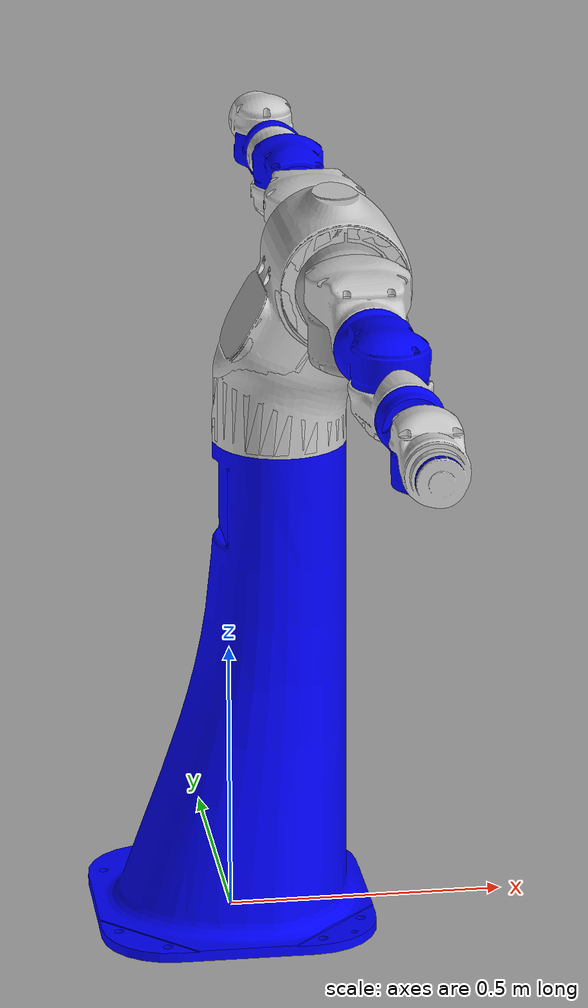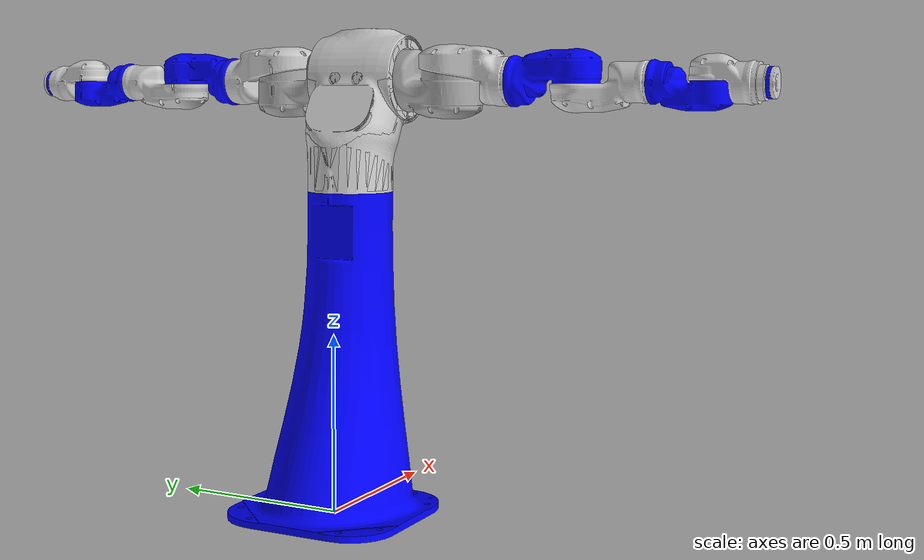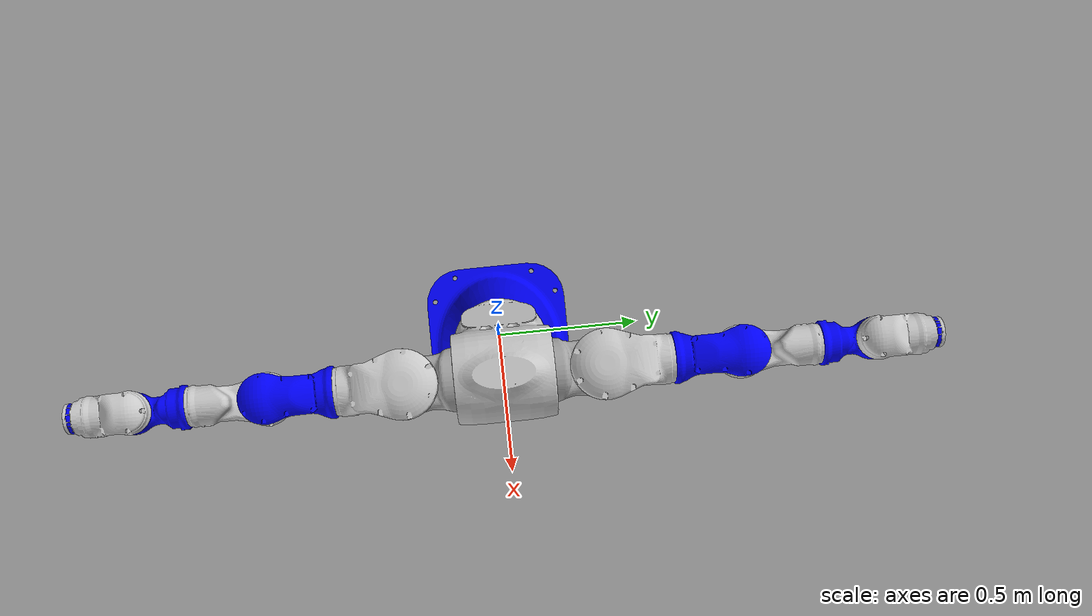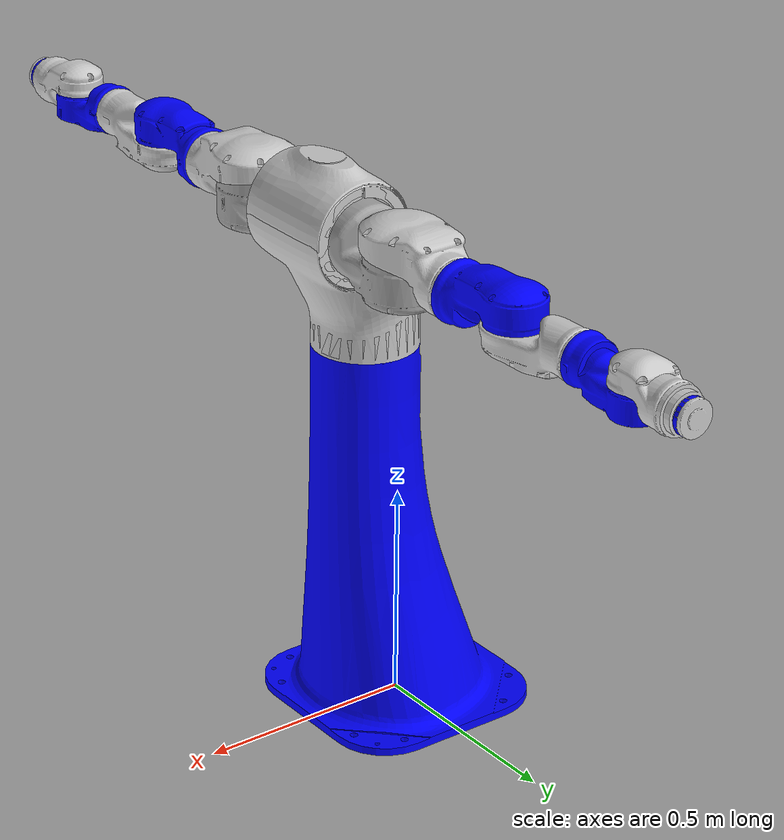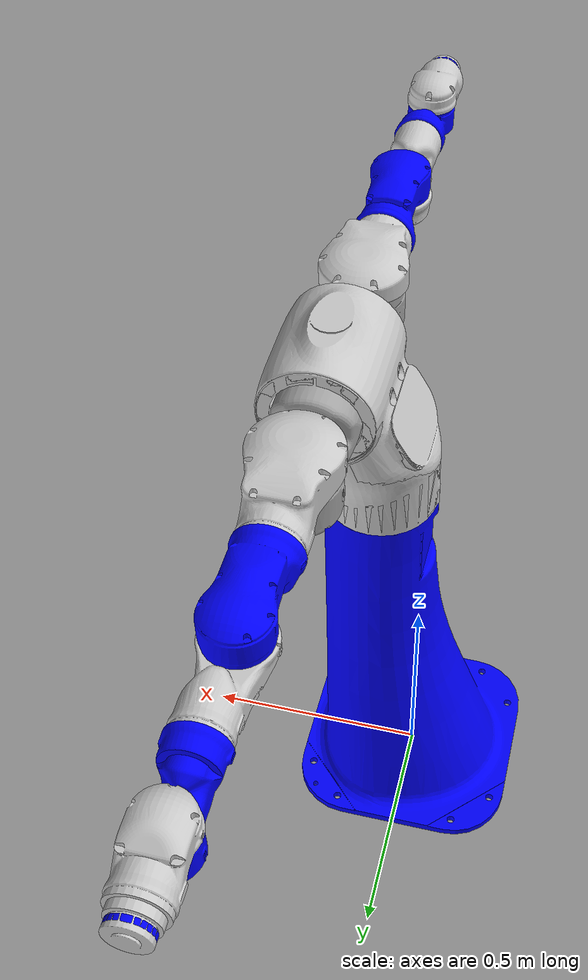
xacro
<?xml version="1.0" ?>
<robot xmlns:xacro="http://ros.org/wiki/xacro"
    name="sda10f">
        <xacro:include filename="$(find motoman_sda10f_support)/urdf/common_torso_macro.xacro" />
        <xacro:include filename="$(find motoman_sda10f_support)/urdf/arm_macro.xacro" />

        <xacro:torso name="torso" prefix="torso_"/>

        <xacro:motoman_arm name="arm_left" prefix="arm_left_" parent="torso_link_b1" reflect="1">
            <origin xyz="0.09996 0.0275 0.32214" rpy="1.57 0 0" />
        </xacro:motoman_arm>

        <xacro:motoman_arm name="arm_right" prefix="arm_right_" parent="torso_link_b1" reflect="-1">
            <origin xyz="0.09996 -0.0275 0.32214" rpy="1.57 0 0" />
        </xacro:motoman_arm>

</robot>

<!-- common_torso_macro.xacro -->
<robot xmlns:xacro="http://ros.org/wiki/xacro">
	<xacro:macro name="torso" params="name prefix">
		<!-- link list -->
		<link name="base_link">
			<visual>
				<geometry>
					<mesh filename="package://motoman_sda10f_support/meshes/sda10f/visual/motoman_base.stl" />
				</geometry>
				<material name="blue">
					<color rgba="0 0 1 1"/>
				</material>
			</visual>
			<collision>
				<geometry>
					<mesh filename="package://motoman_sda10f_support/meshes/sda10f/collision/motoman_base.stl" />
				</geometry>
				<material name="yellow">
					<color rgba="0 1 1 1"/>
				</material>
			</collision>
		    <inertial>
		        <mass value="0.00001" />
		        <origin xyz="0 0 0" rpy="0 -0 0" />
		        <inertia ixx="1" ixy="0" ixz="0" iyy="1" iyz="0" izz="1" />
		    </inertial>
		</link>
		<link name="${prefix}link_b1">
			<visual>
				<origin rpy="0 0 0" xyz="0 0 0"/>
				<geometry>
					<mesh filename="package://motoman_sda10f_support/meshes/sda10f/visual/motoman_axis_b1.stl"/>
				</geometry>
				<material name="silver">
					<color rgba="0.8 0.8 0.8 1"/>
				</material>
			</visual>
			<collision>
				<origin rpy="0 0 0" xyz="0 0 0"/>
				<geometry>
					<mesh filename="package://motoman_sda10f_support/meshes/sda10f/collision/motoman_axis_b1.stl" />
				</geometry>
				<material name="yellow"/>
			</collision>
		</link>
		<link name="${prefix}link_b2">
			<visual>
				<origin rpy="0 0 0" xyz="0 0 0"/>
				<geometry>
					<mesh filename="package://motoman_sda10f_support/meshes/sda10f/visual/motoman_axis_b1.stl"/>
				</geometry>
				<material name="silver">
					<color rgba="0.8 0.8 0.8 1"/>
				</material>
			</visual>
			<collision>
				<origin rpy="0 0 0" xyz="0 0 0"/>
				<geometry>
					<mesh filename="package://motoman_sda10f_support/meshes/sda10f/collision/motoman_axis_b1.stl" />
				</geometry>
				<material name="yellow"/>
			</collision>
		</link>
		<!-- joint list -->
		<joint name="${prefix}joint_b1" type="revolute">
			<parent link="base_link"/>
			<child link="${prefix}link_b1"/>
			<origin xyz="0.09257 0 0.877" rpy="0 0 0"/>
			<axis xyz="0 0 1" />
			<limit lower="-2.9570" upper="2.9570" effort="100" velocity="2.26" />
		</joint>
		<joint name="${prefix}joint_b2" type="revolute">
			<parent link="base_link"/>
			<child link="${prefix}link_b2"/>
			<origin xyz="0.09257 0 0.8835" rpy="0 0 0"/>
			<axis xyz="0 0 1" />
			<limit lower="-2.9570" upper="2.9570" effort="100" velocity="2.26" />
		</joint>
		<!-- end of joint list -->
	</xacro:macro>
</robot>

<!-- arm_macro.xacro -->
<robot xmlns:xacro="http://ros.org/wiki/xacro">
	<xacro:macro name="motoman_arm" params="name prefix parent *origin reflect">
		<link name="${prefix}link_1_s">
			<visual>
				<origin rpy="0 0 0" xyz="0 0 0"/>
				<geometry>
					<mesh filename="package://motoman_sda10f_support/meshes/sda10f/visual/motoman_axis_s.stl"/>
				</geometry>
				<material name="blue">
					<color rgba="0.65 0.65 0.65 1"/>
				</material>
			</visual>
			<collision>
				<origin rpy="0 0 0" xyz="0 0 0"/>
				<geometry>
					<mesh filename="package://motoman_sda10f_support/meshes/sda10f/collision/motoman_axis_s.stl" />
				</geometry>
				<material name="yellow"/>
			</collision>
		</link>
		<link name="${prefix}link_2_l">
			<visual>
				<origin rpy="0 0 0" xyz="0 0 0"/>
				<geometry>
					<mesh filename="package://motoman_sda10f_support/meshes/sda10f/visual/motoman_axis_l.stl"/>
				</geometry>
				<material name="silver"/>
			</visual>
			<collision>
				<origin rpy="0 0 0" xyz="0 0 0"/>
				<geometry>
					<mesh filename="package://motoman_sda10f_support/meshes/sda10f/collision/motoman_axis_l.stl"/>
				</geometry>
				<material name="yellow"/>
			</collision>
		</link>
		<link name="${prefix}link_3_e">
			<visual>
				<origin rpy="0 0 0" xyz="0 0 0"/>
				<geometry>
					<mesh filename="package://motoman_sda10f_support/meshes/sda10f/visual/motoman_axis_e.stl"/>
				</geometry>
				<material name="blue"/>
			</visual>
			<collision>
				<origin rpy="0 0 0" xyz="0 0 0"/>
				<geometry>
					<mesh filename="package://motoman_sda10f_support/meshes/sda10f/collision/motoman_axis_e.stl"/>
				</geometry>
				<material name="yellow"/>
			</collision>
		</link>
		<link name="${prefix}link_4_u">
			<visual>
				<origin rpy="0 0 0" xyz="0 0 0"/>
				<geometry>
					<mesh filename="package://motoman_sda10f_support/meshes/sda10f/visual/motoman_axis_u.stl"/>
				</geometry>
				<material name="silver"/>
			</visual>
			<collision>
				<origin rpy="0 0 0" xyz="0 0 0"/>
				<geometry>
					<mesh filename="package://motoman_sda10f_support/meshes/sda10f/collision/motoman_axis_u.stl"/>
				</geometry>
				<material name="yellow"/>
			</collision>
		</link>
		<link name="${prefix}link_5_r">
			<visual>
				<origin rpy="0 0 0" xyz="0 0 0"/>
				<geometry>
					<mesh filename="package://motoman_sda10f_support/meshes/sda10f/visual/motoman_axis_r.stl"/>
				</geometry>
				<material name="blue"/>
			</visual>
			<collision>
				<origin rpy="0 0 0" xyz="0 0 0"/>
				<geometry>
					<mesh filename="package://motoman_sda10f_support/meshes/sda10f/collision/motoman_axis_r.stl"/>
				</geometry>
				<material name="yellow"/>
			</collision>
		</link>
		<link name="${prefix}link_6_b">
			<visual>
				<origin rpy="0 0 0" xyz="0 0 0"/>
				<geometry>
					<mesh filename="package://motoman_sda10f_support/meshes/sda10f/visual/motoman_axis_b.stl"/>
				</geometry>
				<material name="silver"/>
			</visual>
			<collision>
				<origin rpy="0 0 0" xyz="0 0 0"/>
				<geometry>
					<mesh filename="package://motoman_sda10f_support/meshes/sda10f/collision/motoman_axis_b.stl"/>
				</geometry>
				<material name="yellow"/>
			</collision>
		</link>
		<link name="${prefix}link_7_t">
			<visual>
				<geometry>
					<mesh filename="package://motoman_sda10f_support/meshes/sda10f/visual/motoman_axis_t.stl" />
				</geometry>
				<material name="blue"/>
			</visual>
			<collision>
				<geometry>
					<mesh filename="package://motoman_sda10f_support/meshes/sda10f/collision/motoman_axis_t.stl" />
				</geometry>
				<material name="yellow"/>
			</collision>
		</link>
	    <link name="${prefix}link_tool0" />

		<joint name="${prefix}joint_1_s" type="revolute">
			<parent link="torso_link_b1"/>
			<child link="${prefix}link_1_s"/>
			<origin xyz="0.09996 ${reflect*0.0375} 0.32214" rpy="1.57 0 ${(reflect-1)*1.57}"/>
			<axis xyz="0 0 ${-reflect}" />
			<limit lower="-3.13" upper="3.13" effort="0" velocity="2.95" />
		</joint>
		<joint name="${prefix}joint_2_l" type="revolute">
			<parent link="${prefix}link_1_s"/>
			<child link="${prefix}link_2_l"/>
			<origin xyz="0 0.0427 -0.2255" rpy="-1.57 0 0"/>
			<axis xyz="0 0 ${-reflect}" />
			<limit lower="-1.90" upper="1.90" effort="0" velocity="2.95" />
		</joint>
		<joint name="${prefix}joint_3_e" type="revolute">
			<parent link="${prefix}link_2_l"/>
			<child link="${prefix}link_3_e"/>
			<origin xyz="0 0.1790 -0.0454" rpy="1.57 0 0"/>
			<axis xyz="0 0 ${-reflect}" />
			<limit lower="-2.95" upper="2.95" effort="0" velocity="2.95" />
		</joint>
		<joint name="${prefix}joint_4_u" type="revolute">
			<parent link="${prefix}link_3_e"/>
			<child link="${prefix}link_4_u"/>
			<origin xyz="0 -0.0175 -0.181" rpy="-1.57 0 0"/>
			<axis xyz="0 0 ${reflect}" />
			<limit lower="-2.36" upper="2.36" effort="0" velocity="2.95" />
		</joint>
		<joint name="${prefix}joint_5_r" type="revolute">
			<parent link="${prefix}link_4_u"/>
			<child link="${prefix}link_5_r"/>
			<origin xyz="0 0.2036 0.0155" rpy="1.57 0 0"/>
			<axis xyz="0 0 ${reflect}" />
			<limit lower="-3.13" upper="3.13" effort="0" velocity="3.48" />
		</joint>
		<joint name="${prefix}joint_6_b" type="revolute">
			<parent link="${prefix}link_5_r"/>
			<child link="${prefix}link_6_b"/>
			<origin xyz="0 0.0130 -0.155" rpy="-1.57 0 0"/>
			<axis xyz="0 0 ${reflect}" />
			<limit lower="-1.90" upper="1.90" effort="0" velocity="3.48" />
		</joint>
		<joint name="${prefix}joint_7_t" type="revolute">
			<parent link="${prefix}link_6_b"/>
			<child link="${prefix}link_7_t"/>
			<origin xyz="0 0.144 -0.015" rpy="1.57 0 0"/>
			<axis xyz="0 0 ${reflect}" />
			<limit lower="-3.13" upper="3.13" effort="0" velocity="6.97" />
		</joint>
    <joint name="${prefix}joint_tool0" type="fixed" >
      <origin xyz="0 0 0.0" rpy="0 0 -3.13"/>
      <parent link="${prefix}link_7_t" />
      <child link="${prefix}link_tool0" />
    </joint>
		<!-- end of joint list -->
	</xacro:macro>
</robot>
